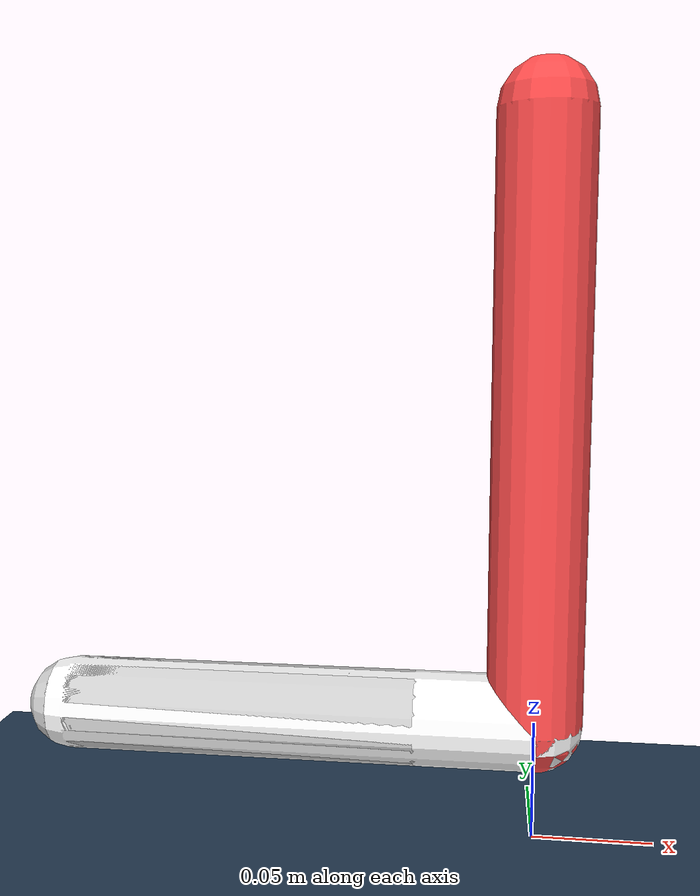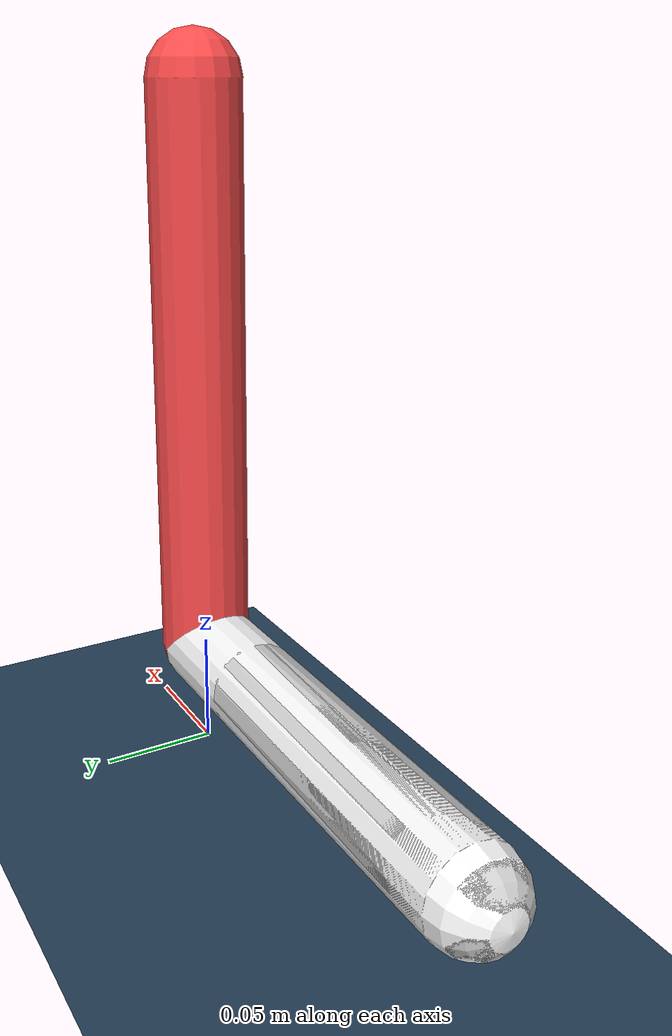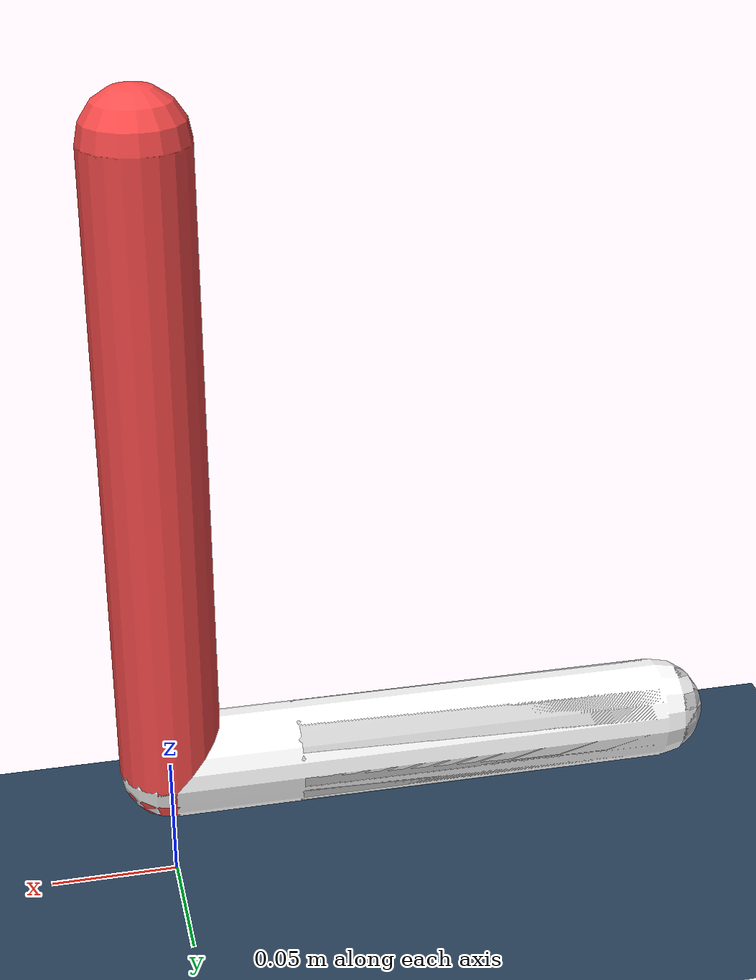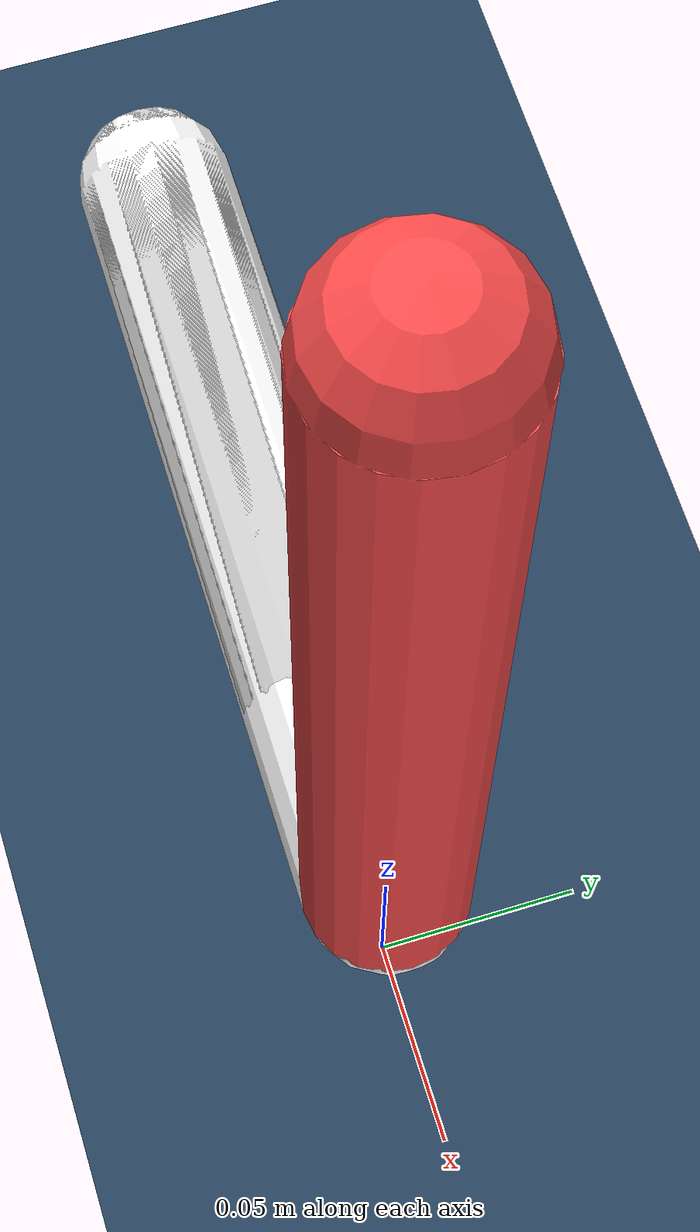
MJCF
<mujoco model="scene">
    <include file="pendulum.xml" />

    <visual>
        <headlight diffuse="0.6 0.6 0.6" ambient="0.3 0.3 0.3" specular="0 0 0" />
        <rgba haze="0.15 0.25 0.35 1" />
        <global azimuth="160" elevation="-20" />
    </visual>

    <asset>
        <texture type="skybox" builtin="gradient" rgb1="0.3 0.5 0.7" rgb2="0 0 0" width="512"
            height="3072" />
        <texture type="2d" name="groundplane" builtin="checker" mark="edge" rgb1="0.2 0.3 0.4"
            rgb2="0.1 0.2 0.3"
            markrgb="0.8 0.8 0.8" width="300" height="300" />
        <material name="groundplane" texture="groundplane" texuniform="true" texrepeat="5 5"
            reflectance="0.2" />
    </asset>

    <worldbody>
        <light pos="0 0 3.5" dir="0 0 -1" directional="true" />
        <geom name="floor" size="0 0 0.05" contype="2" conaffinity="2"  pos="0 0 0" type="plane" material="groundplane" />
         <camera name="fixed" pos="0 -1 0" xyaxes="1 0 0 0 0 1"/>
    </worldbody>
</mujoco>

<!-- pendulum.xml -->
<mujoco>
  <option timestep=".001"></option>

  <default>
    <joint type="hinge" axis="0 -1 0"/>
    <geom type="capsule" size=".02"/>
    <!-- Visual geoms will have these properties -->
    <default class="visual">
      <geom contype="0" conaffinity="0" group="1"/>
    </default>
    <!-- Collision geoms will have these properties -->
    <default class="collision">
      <geom contype="2" conaffinity="2" rgba="0.5 0.5 0.5 0.3" group="2"/>
    </default>
  </default>

  <worldbody>
    <body name="toplink" pos="0 0 .3">
      <joint name="root"/>
      <!-- Visual geom for toplink -->
      <geom name="toplink_visual" class="visual" fromto="0 0 0 0 0 -.25" rgba="1 0.3 0.3 1"/>
      <!-- Collision geom for toplink -->
      <geom name="toplink_collision" class="collision" fromto="0 0 0 0 0 -.25"/>

      <!-- Adding a site for the force sensor -->
       <site name="force_site" pos="0.0 0.0 -0.1" size="0.01"/>

      <body name="bottomlink" pos="0 0 -.25" quat="0 0.7071068 0 0.7071068">
        <joint name="actjoint" frictionloss="0.1" armature="0.005"/>
        <!-- Visual geom for bottomlink -->
        <geom name="bottomlink_visual" class="visual" fromto="0 0 0 0 0 -.2" rgba="1 1 1 1"/>
        <!-- Collision geom for bottomlink -->
        <geom name="bottomlink_collision" class="collision" fromto="0 0 -0.05 0 0 -.2"/>

      </body>
    </body>
  </worldbody>

  <!-- Define explicit pair-wise contacts -->
  <contact>
    <pair geom1="toplink_collision" geom2="bottomlink_collision"/>
  </contact>

  <actuator>
    <motor name="rs04joint" joint="actjoint" ctrlrange="-5 5"/>
  </actuator>

  <!-- Adding the sensor section with a force sensor -->
  <sensor>
    <!-- Force sensor at the specified site -->
    <force name="force_sensor" site="force_site"/>
  </sensor>
</mujoco>
